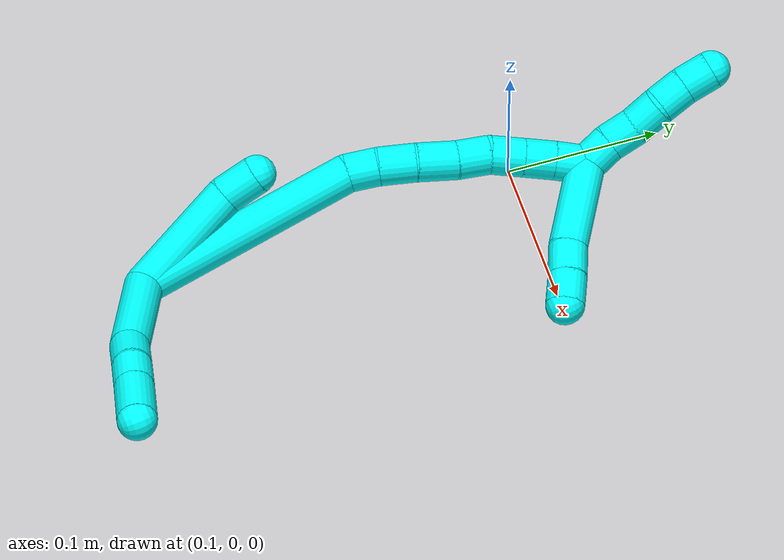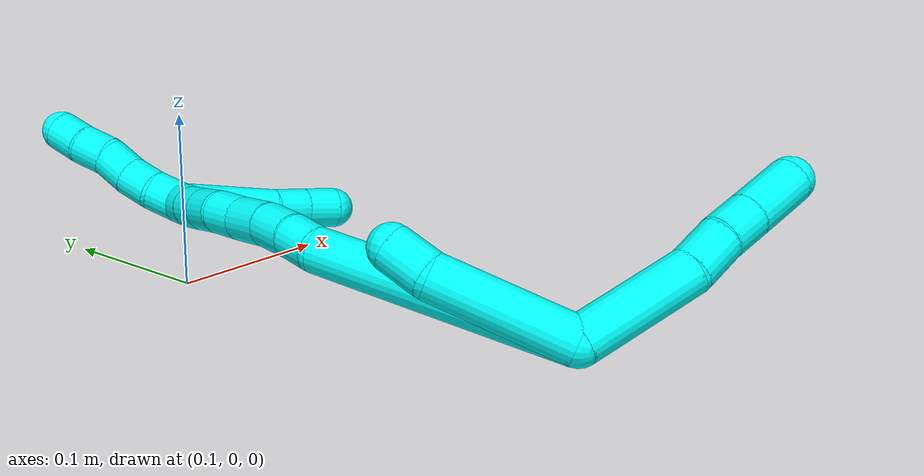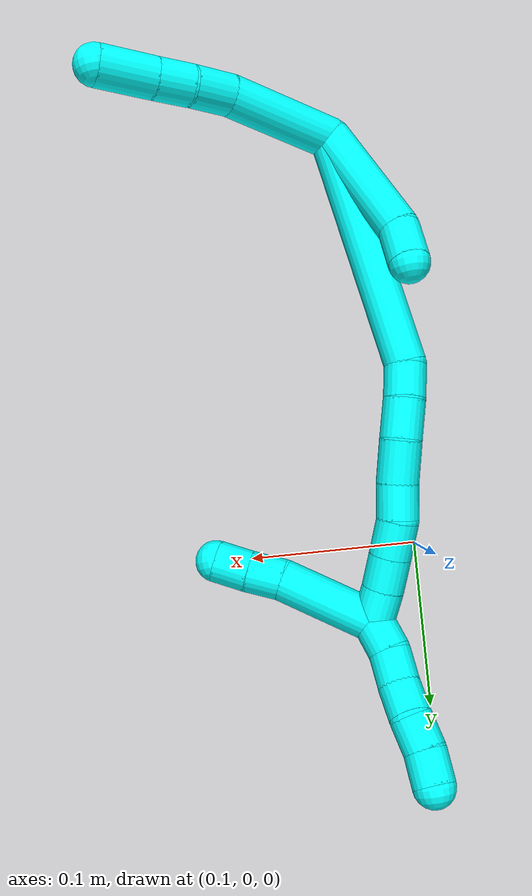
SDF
<sdf version="1.7">
 <world name="default">
  <model name="3">
   <static>0</static>
   <link name="3">
    <collision name="collision-cylinder-e_1_2_8">
     <pose>0.021516 0.023139 0.012491 -1.0758 0.685757 -0.419665</pose>
     <geometry><cylinder><radius>0.0125</radius><length>0.067953</length></cylinder></geometry>
     <surface>
      <friction><ode><mu>1.16</mu><mu2>1.16</mu2><slip1>0</slip1><slip2>0</slip2></ode></friction>
      <contact><ode><kp>1e+06</kp><kd>1</kd><max_vel>0</max_vel><min_depth>0.001</min_depth></ode></contact>
     </surface>
    </collision>
    <visual name="visual-cylinder-e_1_2_8">
     <pose>0.021516 0.023139 0.012491 -1.0758 0.685757 -0.419665</pose>
     <geometry><cylinder><radius>0.0125</radius><length>0.067953</length></cylinder></geometry>
     <material><ambient>0.003922 1 0.996078 1</ambient></material>
    </visual>
    <collision name="collision-cylinder-e_2_8_9">
     <pose>0.050877 0.055886 0.02696 -1.36773 0.674663 -0.556897</pose>
     <geometry><cylinder><radius>0.0125</radius><length>0.025121</length></cylinder></geometry>
     <surface>
      <friction><ode><mu>1.16</mu><mu2>1.16</mu2><slip1>0</slip1><slip2>0</slip2></ode></friction>
      <contact><ode><kp>1e+06</kp><kd>1</kd><max_vel>0</max_vel><min_depth>0.001</min_depth></ode></contact>
     </surface>
    </collision>
    <visual name="visual-cylinder-e_2_8_9">
     <pose>0.050877 0.055886 0.02696 -1.36773 0.674663 -0.556897</pose>
     <geometry><cylinder><radius>0.0125</radius><length>0.025121</length></cylinder></geometry>
     <material><ambient>0.003922 1 0.996078 1</ambient></material>
    </visual>
    <collision name="collision-cylinder-e_3_9_10">
     <pose>0.066505 0.072833 0.031038 -1.29224 0.794975 -0.613226</pose>
     <geometry><cylinder><radius>0.0125</radius><length>0.021803</length></cylinder></geometry>
     <surface>
      <friction><ode><mu>1.16</mu><mu2>1.16</mu2><slip1>0</slip1><slip2>0</slip2></ode></friction>
      <contact><ode><kp>1e+06</kp><kd>1</kd><max_vel>0</max_vel><min_depth>0.001</min_depth></ode></contact>
     </surface>
    </collision>
    <visual name="visual-cylinder-e_3_9_10">
     <pose>0.066505 0.072833 0.031038 -1.29224 0.794975 -0.613226</pose>
     <geometry><cylinder><radius>0.0125</radius><length>0.021803</length></cylinder></geometry>
     <material><ambient>0.003922 1 0.996078 1</ambient></material>
    </visual>
    <collision name="collision-cylinder-e_4_10_6">
     <pose>0.086569 0.092229 0.036633 -1.28857 0.774515 -0.594617</pose>
     <geometry><cylinder><radius>0.0125</radius><length>0.035124</length></cylinder></geometry>
     <surface>
      <friction><ode><mu>1.16</mu><mu2>1.16</mu2><slip1>0</slip1><slip2>0</slip2></ode></friction>
      <contact><ode><kp>1e+06</kp><kd>1</kd><max_vel>0</max_vel><min_depth>0.001</min_depth></ode></contact>
     </surface>
    </collision>
    <visual name="visual-cylinder-e_4_10_6">
     <pose>0.086569 0.092229 0.036633 -1.28857 0.774515 -0.594617</pose>
     <geometry><cylinder><radius>0.0125</radius><length>0.035124</length></cylinder></geometry>
     <material><ambient>0.003922 1 0.996078 1</ambient></material>
    </visual>
    <collision name="collision-cylinder-e_1_2_11">
     <pose>-0.016629 0.004161 -0.033913 -3.01952 -0.452944 2.62308</pose>
     <geometry><cylinder><radius>0.0125</radius><length>0.075998</length></cylinder></geometry>
     <surface>
      <friction><ode><mu>1.16</mu><mu2>1.16</mu2><slip1>0</slip1><slip2>0</slip2></ode></friction>
      <contact><ode><kp>1e+06</kp><kd>1</kd><max_vel>0</max_vel><min_depth>0.001</min_depth></ode></contact>
     </surface>
    </collision>
    <visual name="visual-cylinder-e_1_2_11">
     <pose>-0.016629 0.004161 -0.033913 -3.01952 -0.452944 2.62308</pose>
     <geometry><cylinder><radius>0.0125</radius><length>0.075998</length></cylinder></geometry>
     <material><ambient>0.003922 1 0.996078 1</ambient></material>
    </visual>
    <collision name="collision-cylinder-e_2_11_5">
     <pose>-0.035173 0.01165 -0.079196 -2.85677 -0.160258 1.02104</pose>
     <geometry><cylinder><radius>0.0125</radius><length>0.024002</length></cylinder></geometry>
     <surface>
      <friction><ode><mu>1.16</mu><mu2>1.16</mu2><slip1>0</slip1><slip2>0</slip2></ode></friction>
      <contact><ode><kp>1e+06</kp><kd>1</kd><max_vel>0</max_vel><min_depth>0.001</min_depth></ode></contact>
     </surface>
    </collision>
    <visual name="visual-cylinder-e_2_11_5">
     <pose>-0.035173 0.01165 -0.079196 -2.85677 -0.160258 1.02104</pose>
     <geometry><cylinder><radius>0.0125</radius><length>0.024002</length></cylinder></geometry>
     <material><ambient>0.003922 1 0.996078 1</ambient></material>
    </visual>
    <collision name="collision-cylinder-e_1_2_12">
     <pose>-0.010283 -0.00063 -0.072612 3.13291 -0.140671 -3.01853</pose>
     <geometry><cylinder><radius>0.0125</radius><length>0.146678</length></cylinder></geometry>
     <surface>
      <friction><ode><mu>1.16</mu><mu2>1.16</mu2><slip1>0</slip1><slip2>0</slip2></ode></friction>
      <contact><ode><kp>1e+06</kp><kd>1</kd><max_vel>0</max_vel><min_depth>0.001</min_depth></ode></contact>
     </surface>
    </collision>
    <visual name="visual-cylinder-e_1_2_12">
     <pose>-0.010283 -0.00063 -0.072612 3.13291 -0.140671 -3.01853</pose>
     <geometry><cylinder><radius>0.0125</radius><length>0.146678</length></cylinder></geometry>
     <material><ambient>0.003922 1 0.996078 1</ambient></material>
    </visual>
    <collision name="collision-cylinder-e_2_12_13">
     <pose>-0.018755 -0.000327 -0.155159 -3.04789 0.179473 -2.18088</pose>
     <geometry><cylinder><radius>0.0125</radius><length>0.020283</length></cylinder></geometry>
     <surface>
      <friction><ode><mu>1.16</mu><mu2>1.16</mu2><slip1>0</slip1><slip2>0</slip2></ode></friction>
      <contact><ode><kp>1e+06</kp><kd>1</kd><max_vel>0</max_vel><min_depth>0.001</min_depth></ode></contact>
     </surface>
    </collision>
    <visual name="visual-cylinder-e_2_12_13">
     <pose>-0.018755 -0.000327 -0.155159 -3.04789 0.179473 -2.18088</pose>
     <geometry><cylinder><radius>0.0125</radius><length>0.020283</length></cylinder></geometry>
     <material><ambient>0.003922 1 0.996078 1</ambient></material>
    </visual>
    <collision name="collision-cylinder-e_3_13_14">
     <pose>-0.013782 0.000746 -0.176586 -3.12943 0.268502 -3.05157</pose>
     <geometry><cylinder><radius>0.0125</radius><length>0.023842</length></cylinder></geometry>
     <surface>
      <friction><ode><mu>1.16</mu><mu2>1.16</mu2><slip1>0</slip1><slip2>0</slip2></ode></friction>
      <contact><ode><kp>1e+06</kp><kd>1</kd><max_vel>0</max_vel><min_depth>0.001</min_depth></ode></contact>
     </surface>
    </collision>
    <visual name="visual-cylinder-e_3_13_14">
     <pose>-0.013782 0.000746 -0.176586 -3.12943 0.268502 -3.05157</pose>
     <geometry><cylinder><radius>0.0125</radius><length>0.023842</length></cylinder></geometry>
     <material><ambient>0.003922 1 0.996078 1</ambient></material>
    </visual>
    <collision name="collision-cylinder-e_4_14_15">
     <pose>-0.006939 -0.000584 -0.200412 3.02298 0.288091 2.36449</pose>
     <geometry><cylinder><radius>0.0125</radius><length>0.025909</length></cylinder></geometry>
     <surface>
      <friction><ode><mu>1.16</mu><mu2>1.16</mu2><slip1>0</slip1><slip2>0</slip2></ode></friction>
      <contact><ode><kp>1e+06</kp><kd>1</kd><max_vel>0</max_vel><min_depth>0.001</min_depth></ode></contact>
     </surface>
    </collision>
    <visual name="visual-cylinder-e_4_14_15">
     <pose>-0.006939 -0.000584 -0.200412 3.02298 0.288091 2.36449</pose>
     <geometry><cylinder><radius>0.0125</radius><length>0.025909</length></cylinder></geometry>
     <material><ambient>0.003922 1 0.996078 1</ambient></material>
    </visual>
    <collision name="collision-cylinder-e_5_15_16">
     <pose>-0.001264 -0.002806 -0.223154 3.06944 0.188801 2.41323</pose>
     <geometry><cylinder><radius>0.0125</radius><length>0.021248</length></cylinder></geometry>
     <surface>
      <friction><ode><mu>1.16</mu><mu2>1.16</mu2><slip1>0</slip1><slip2>0</slip2></ode></friction>
      <contact><ode><kp>1e+06</kp><kd>1</kd><max_vel>0</max_vel><min_depth>0.001</min_depth></ode></contact>
     </surface>
    </collision>
    <visual name="visual-cylinder-e_5_15_16">
     <pose>-0.001264 -0.002806 -0.223154 3.06944 0.188801 2.41323</pose>
     <geometry><cylinder><radius>0.0125</radius><length>0.021248</length></cylinder></geometry>
     <material><ambient>0.003922 1 0.996078 1</ambient></material>
    </visual>
    <collision name="collision-cylinder-e_6_16_17">
     <pose>0.005228 -0.005029 -0.243354 2.99246 0.426442 2.4771</pose>
     <geometry><cylinder><radius>0.0125</radius><length>0.021753</length></cylinder></geometry>
     <surface>
      <friction><ode><mu>1.16</mu><mu2>1.16</mu2><slip1>0</slip1><slip2>0</slip2></ode></friction>
      <contact><ode><kp>1e+06</kp><kd>1</kd><max_vel>0</max_vel><min_depth>0.001</min_depth></ode></contact>
     </surface>
    </collision>
    <visual name="visual-cylinder-e_6_16_17">
     <pose>0.005228 -0.005029 -0.243354 2.99246 0.426442 2.4771</pose>
     <geometry><cylinder><radius>0.0125</radius><length>0.021753</length></cylinder></geometry>
     <material><ambient>0.003922 1 0.996078 1</ambient></material>
    </visual>
    <collision name="collision-cylinder-e_7_17_18">
     <pose>0.013966 -0.007788 -0.262205 3.00041 0.433893 2.52075</pose>
     <geometry><cylinder><radius>0.0125</radius><length>0.020168</length></cylinder></geometry>
     <surface>
      <friction><ode><mu>1.16</mu><mu2>1.16</mu2><slip1>0</slip1><slip2>0</slip2></ode></friction>
      <contact><ode><kp>1e+06</kp><kd>1</kd><max_vel>0</max_vel><min_depth>0.001</min_depth></ode></contact>
     </surface>
    </collision>
    <visual name="visual-cylinder-e_7_17_18">
     <pose>0.013966 -0.007788 -0.262205 3.00041 0.433893 2.52075</pose>
     <geometry><cylinder><radius>0.0125</radius><length>0.020168</length></cylinder></geometry>
     <material><ambient>0.003922 1 0.996078 1</ambient></material>
    </visual>
    <collision name="collision-cylinder-e_8_18_1">
     <pose>0.022986 -0.009806 -0.280085 3.05891 0.495193 2.81719</pose>
     <geometry><cylinder><radius>0.0125</radius><length>0.02012</length></cylinder></geometry>
     <surface>
      <friction><ode><mu>1.16</mu><mu2>1.16</mu2><slip1>0</slip1><slip2>0</slip2></ode></friction>
      <contact><ode><kp>1e+06</kp><kd>1</kd><max_vel>0</max_vel><min_depth>0.001</min_depth></ode></contact>
     </surface>
    </collision>
    <visual name="visual-cylinder-e_8_18_1">
     <pose>0.022986 -0.009806 -0.280085 3.05891 0.495193 2.81719</pose>
     <geometry><cylinder><radius>0.0125</radius><length>0.02012</length></cylinder></geometry>
     <material><ambient>0.003922 1 0.996078 1</ambient></material>
    </visual>
    <collision name="collision-cylinder-e_1_1_19">
     <pose>0.02409 -0.009433 -0.29814 -3.02259 -0.376458 2.53538</pose>
     <geometry><cylinder><radius>0.0125</radius><length>0.02</length></cylinder></geometry>
     <surface>
      <friction><ode><mu>1.16</mu><mu2>1.16</mu2><slip1>0</slip1><slip2>0</slip2></ode></friction>
      <contact><ode><kp>1e+06</kp><kd>1</kd><max_vel>0</max_vel><min_depth>0.001</min_depth></ode></contact>
     </surface>
    </collision>
    <visual name="visual-cylinder-e_1_1_19">
     <pose>0.02409 -0.009433 -0.29814 -3.02259 -0.376458 2.53538</pose>
     <geometry><cylinder><radius>0.0125</radius><length>0.02</length></cylinder></geometry>
     <material><ambient>0.003922 1 0.996078 1</ambient></material>
    </visual>
    <collision name="collision-cylinder-e_2_19_20">
     <pose>0.018772 -0.006517 -0.31707 -2.95687 -0.16501 1.45762</pose>
     <geometry><cylinder><radius>0.0125</radius><length>0.02</length></cylinder></geometry>
     <surface>
      <friction><ode><mu>1.16</mu><mu2>1.16</mu2><slip1>0</slip1><slip2>0</slip2></ode></friction>
      <contact><ode><kp>1e+06</kp><kd>1</kd><max_vel>0</max_vel><min_depth>0.001</min_depth></ode></contact>
     </surface>
    </collision>
    <visual name="visual-cylinder-e_2_19_20">
     <pose>0.018772 -0.006517 -0.31707 -2.95687 -0.16501 1.45762</pose>
     <geometry><cylinder><radius>0.0125</radius><length>0.02</length></cylinder></geometry>
     <material><ambient>0.003922 1 0.996078 1</ambient></material>
    </visual>
    <collision name="collision-cylinder-e_3_20_21">
     <pose>0.014437 -0.001209 -0.335741 -2.77006 -0.272522 1.2606</pose>
     <geometry><cylinder><radius>0.0125</radius><length>0.02</length></cylinder></geometry>
     <surface>
      <friction><ode><mu>1.16</mu><mu2>1.16</mu2><slip1>0</slip1><slip2>0</slip2></ode></friction>
      <contact><ode><kp>1e+06</kp><kd>1</kd><max_vel>0</max_vel><min_depth>0.001</min_depth></ode></contact>
     </surface>
    </collision>
    <visual name="visual-cylinder-e_3_20_21">
     <pose>0.014437 -0.001209 -0.335741 -2.77006 -0.272522 1.2606</pose>
     <geometry><cylinder><radius>0.0125</radius><length>0.02</length></cylinder></geometry>
     <material><ambient>0.003922 1 0.996078 1</ambient></material>
    </visual>
    <collision name="collision-cylinder-e_4_21_22">
     <pose>0.008979 0.003396 -0.35426 -3.02599 -0.280289 2.36309</pose>
     <geometry><cylinder><radius>0.0125</radius><length>0.02</length></cylinder></geometry>
     <surface>
      <friction><ode><mu>1.16</mu><mu2>1.16</mu2><slip1>0</slip1><slip2>0</slip2></ode></friction>
      <contact><ode><kp>1e+06</kp><kd>1</kd><max_vel>0</max_vel><min_depth>0.001</min_depth></ode></contact>
     </surface>
    </collision>
    <visual name="visual-cylinder-e_4_21_22">
     <pose>0.008979 0.003396 -0.35426 -3.02599 -0.280289 2.36309</pose>
     <geometry><cylinder><radius>0.0125</radius><length>0.02</length></cylinder></geometry>
     <material><ambient>0.003922 1 0.996078 1</ambient></material>
    </visual>
    <collision name="collision-cylinder-e_5_22_4">
     <pose>0.004865 0.006282 -0.373554 -2.96116 -0.135183 1.28488</pose>
     <geometry><cylinder><radius>0.0125</radius><length>0.02</length></cylinder></geometry>
     <surface>
      <friction><ode><mu>1.16</mu><mu2>1.16</mu2><slip1>0</slip1><slip2>0</slip2></ode></friction>
      <contact><ode><kp>1e+06</kp><kd>1</kd><max_vel>0</max_vel><min_depth>0.001</min_depth></ode></contact>
     </surface>
    </collision>
    <visual name="visual-cylinder-e_5_22_4">
     <pose>0.004865 0.006282 -0.373554 -2.96116 -0.135183 1.28488</pose>
     <geometry><cylinder><radius>0.0125</radius><length>0.02</length></cylinder></geometry>
     <material><ambient>0.003922 1 0.996078 1</ambient></material>
    </visual>
    <collision name="collision-cylinder-e_1_1_23">
     <pose>0.051524 -0.00476 -0.272731 -0.343025 0.944819 -0.176565</pose>
     <geometry><cylinder><radius>0.0125</radius><length>0.058632</length></cylinder></geometry>
     <surface>
      <friction><ode><mu>1.16</mu><mu2>1.16</mu2><slip1>0</slip1><slip2>0</slip2></ode></friction>
      <contact><ode><kp>1e+06</kp><kd>1</kd><max_vel>0</max_vel><min_depth>0.001</min_depth></ode></contact>
     </surface>
    </collision>
    <visual name="visual-cylinder-e_1_1_23">
     <pose>0.051524 -0.00476 -0.272731 -0.343025 0.944819 -0.176565</pose>
     <geometry><cylinder><radius>0.0125</radius><length>0.058632</length></cylinder></geometry>
     <material><ambient>0.003922 1 0.996078 1</ambient></material>
    </visual>
    <collision name="collision-cylinder-e_2_23_24">
     <pose>0.084455 0.003745 -0.252478 -0.589628 1.07967 -0.359977</pose>
     <geometry><cylinder><radius>0.0125</radius><length>0.020806</length></cylinder></geometry>
     <surface>
      <friction><ode><mu>1.16</mu><mu2>1.16</mu2><slip1>0</slip1><slip2>0</slip2></ode></friction>
      <contact><ode><kp>1e+06</kp><kd>1</kd><max_vel>0</max_vel><min_depth>0.001</min_depth></ode></contact>
     </surface>
    </collision>
    <visual name="visual-cylinder-e_2_23_24">
     <pose>0.084455 0.003745 -0.252478 -0.589628 1.07967 -0.359977</pose>
     <geometry><cylinder><radius>0.0125</radius><length>0.020806</length></cylinder></geometry>
     <material><ambient>0.003922 1 0.996078 1</ambient></material>
    </visual>
    <collision name="collision-cylinder-e_3_24_3">
     <pose>0.102466 0.009012 -0.243801 -0.504504 1.03449 -0.29119</pose>
     <geometry><cylinder><radius>0.0125</radius><length>0.020562</length></cylinder></geometry>
     <surface>
      <friction><ode><mu>1.16</mu><mu2>1.16</mu2><slip1>0</slip1><slip2>0</slip2></ode></friction>
      <contact><ode><kp>1e+06</kp><kd>1</kd><max_vel>0</max_vel><min_depth>0.001</min_depth></ode></contact>
     </surface>
    </collision>
    <visual name="visual-cylinder-e_3_24_3">
     <pose>0.102466 0.009012 -0.243801 -0.504504 1.03449 -0.29119</pose>
     <geometry><cylinder><radius>0.0125</radius><length>0.020562</length></cylinder></geometry>
     <material><ambient>0.003922 1 0.996078 1</ambient></material>
    </visual>
    <collision name="collision-sphere-3">
     <pose>0.111304 0.011551 -0.239202 0 -0 0</pose>
     <geometry><sphere><radius>0.0125</radius></sphere></geometry>
     <surface>
      <friction><ode><mu>1.16</mu><mu2>1.16</mu2><slip1>0</slip1><slip2>0</slip2></ode></friction>
      <contact><ode><kp>1e+06</kp><kd>1</kd><max_vel>0</max_vel><min_depth>0.001</min_depth></ode></contact>
     </surface>
    </collision>
    <visual name="visual-sphere-3">
     <pose>0.111304 0.011551 -0.239202 0 -0 0</pose>
     <geometry><sphere><radius>0.0125</radius></sphere></geometry>
     <material><ambient>0.003922 1 0.996078 1</ambient></material>
    </visual>
    <collision name="collision-sphere-24">
     <pose>0.093628 0.006473 -0.2484 0 -0 0</pose>
     <geometry><sphere><radius>0.0125</radius></sphere></geometry>
     <surface>
      <friction><ode><mu>1.16</mu><mu2>1.16</mu2><slip1>0</slip1><slip2>0</slip2></ode></friction>
      <contact><ode><kp>1e+06</kp><kd>1</kd><max_vel>0</max_vel><min_depth>0.001</min_depth></ode></contact>
     </surface>
    </collision>
    <visual name="visual-sphere-24">
     <pose>0.093628 0.006473 -0.2484 0 -0 0</pose>
     <geometry><sphere><radius>0.0125</radius></sphere></geometry>
     <material><ambient>0.003922 1 0.996078 1</ambient></material>
    </visual>
    <collision name="collision-sphere-23">
     <pose>0.075282 0.001016 -0.256555 0 -0 0</pose>
     <geometry><sphere><radius>0.0125</radius></sphere></geometry>
     <surface>
      <friction><ode><mu>1.16</mu><mu2>1.16</mu2><slip1>0</slip1><slip2>0</slip2></ode></friction>
      <contact><ode><kp>1e+06</kp><kd>1</kd><max_vel>0</max_vel><min_depth>0.001</min_depth></ode></contact>
     </surface>
    </collision>
    <visual name="visual-sphere-23">
     <pose>0.075282 0.001016 -0.256555 0 -0 0</pose>
     <geometry><sphere><radius>0.0125</radius></sphere></geometry>
     <material><ambient>0.003922 1 0.996078 1</ambient></material>
    </visual>
    <collision name="collision-sphere-4">
     <pose>0.003518 0.00806 -0.383301 0 -0 0</pose>
     <geometry><sphere><radius>0.0125</radius></sphere></geometry>
     <surface>
      <friction><ode><mu>1.16</mu><mu2>1.16</mu2><slip1>0</slip1><slip2>0</slip2></ode></friction>
      <contact><ode><kp>1e+06</kp><kd>1</kd><max_vel>0</max_vel><min_depth>0.001</min_depth></ode></contact>
     </surface>
    </collision>
    <visual name="visual-sphere-4">
     <pose>0.003518 0.00806 -0.383301 0 -0 0</pose>
     <geometry><sphere><radius>0.0125</radius></sphere></geometry>
     <material><ambient>0.003922 1 0.996078 1</ambient></material>
    </visual>
    <collision name="collision-sphere-22">
     <pose>0.006213 0.004504 -0.363806 0 -0 0</pose>
     <geometry><sphere><radius>0.0125</radius></sphere></geometry>
     <surface>
      <friction><ode><mu>1.16</mu><mu2>1.16</mu2><slip1>0</slip1><slip2>0</slip2></ode></friction>
      <contact><ode><kp>1e+06</kp><kd>1</kd><max_vel>0</max_vel><min_depth>0.001</min_depth></ode></contact>
     </surface>
    </collision>
    <visual name="visual-sphere-22">
     <pose>0.006213 0.004504 -0.363806 0 -0 0</pose>
     <geometry><sphere><radius>0.0125</radius></sphere></geometry>
     <material><ambient>0.003922 1 0.996078 1</ambient></material>
    </visual>
    <collision name="collision-sphere-21">
     <pose>0.011746 0.002287 -0.344714 0 -0 0</pose>
     <geometry><sphere><radius>0.0125</radius></sphere></geometry>
     <surface>
      <friction><ode><mu>1.16</mu><mu2>1.16</mu2><slip1>0</slip1><slip2>0</slip2></ode></friction>
      <contact><ode><kp>1e+06</kp><kd>1</kd><max_vel>0</max_vel><min_depth>0.001</min_depth></ode></contact>
     </surface>
    </collision>
    <visual name="visual-sphere-21">
     <pose>0.011746 0.002287 -0.344714 0 -0 0</pose>
     <geometry><sphere><radius>0.0125</radius></sphere></geometry>
     <material><ambient>0.003922 1 0.996078 1</ambient></material>
    </visual>
    <collision name="collision-sphere-20">
     <pose>0.017129 -0.004706 -0.326767 0 -0 0</pose>
     <geometry><sphere><radius>0.0125</radius></sphere></geometry>
     <surface>
      <friction><ode><mu>1.16</mu><mu2>1.16</mu2><slip1>0</slip1><slip2>0</slip2></ode></friction>
      <contact><ode><kp>1e+06</kp><kd>1</kd><max_vel>0</max_vel><min_depth>0.001</min_depth></ode></contact>
     </surface>
    </collision>
    <visual name="visual-sphere-20">
     <pose>0.017129 -0.004706 -0.326767 0 -0 0</pose>
     <geometry><sphere><radius>0.0125</radius></sphere></geometry>
     <material><ambient>0.003922 1 0.996078 1</ambient></material>
    </visual>
    <collision name="collision-sphere-11">
     <pose>-0.033258 0.008321 -0.067826 0 -0 0</pose>
     <geometry><sphere><radius>0.0125</radius></sphere></geometry>
     <surface>
      <friction><ode><mu>1.16</mu><mu2>1.16</mu2><slip1>0</slip1><slip2>0</slip2></ode></friction>
      <contact><ode><kp>1e+06</kp><kd>1</kd><max_vel>0</max_vel><min_depth>0.001</min_depth></ode></contact>
     </surface>
    </collision>
    <visual name="visual-sphere-11">
     <pose>-0.033258 0.008321 -0.067826 0 -0 0</pose>
     <geometry><sphere><radius>0.0125</radius></sphere></geometry>
     <material><ambient>0.003922 1 0.996078 1</ambient></material>
    </visual>
    <collision name="collision-sphere-6">
     <pose>0.098851 0.104285 0.040128 0 -0 0</pose>
     <geometry><sphere><radius>0.0125</radius></sphere></geometry>
     <surface>
      <friction><ode><mu>1.16</mu><mu2>1.16</mu2><slip1>0</slip1><slip2>0</slip2></ode></friction>
      <contact><ode><kp>1e+06</kp><kd>1</kd><max_vel>0</max_vel><min_depth>0.001</min_depth></ode></contact>
     </surface>
    </collision>
    <visual name="visual-sphere-6">
     <pose>0.098851 0.104285 0.040128 0 -0 0</pose>
     <geometry><sphere><radius>0.0125</radius></sphere></geometry>
     <material><ambient>0.003922 1 0.996078 1</ambient></material>
    </visual>
    <collision name="collision-sphere-10">
     <pose>0.074287 0.080173 0.033137 0 -0 0</pose>
     <geometry><sphere><radius>0.0125</radius></sphere></geometry>
     <surface>
      <friction><ode><mu>1.16</mu><mu2>1.16</mu2><slip1>0</slip1><slip2>0</slip2></ode></friction>
      <contact><ode><kp>1e+06</kp><kd>1</kd><max_vel>0</max_vel><min_depth>0.001</min_depth></ode></contact>
     </surface>
    </collision>
    <visual name="visual-sphere-10">
     <pose>0.074287 0.080173 0.033137 0 -0 0</pose>
     <geometry><sphere><radius>0.0125</radius></sphere></geometry>
     <material><ambient>0.003922 1 0.996078 1</ambient></material>
    </visual>
    <collision name="collision-sphere-9">
     <pose>0.058723 0.065493 0.028938 0 -0 0</pose>
     <geometry><sphere><radius>0.0125</radius></sphere></geometry>
     <surface>
      <friction><ode><mu>1.16</mu><mu2>1.16</mu2><slip1>0</slip1><slip2>0</slip2></ode></friction>
      <contact><ode><kp>1e+06</kp><kd>1</kd><max_vel>0</max_vel><min_depth>0.001</min_depth></ode></contact>
     </surface>
    </collision>
    <visual name="visual-sphere-9">
     <pose>0.058723 0.065493 0.028938 0 -0 0</pose>
     <geometry><sphere><radius>0.0125</radius></sphere></geometry>
     <material><ambient>0.003922 1 0.996078 1</ambient></material>
    </visual>
    <collision name="collision-sphere-2">
     <geometry><sphere><radius>0.0125</radius></sphere></geometry>
     <surface>
      <friction><ode><mu>1.16</mu><mu2>1.16</mu2><slip1>0</slip1><slip2>0</slip2></ode></friction>
      <contact><ode><kp>1e+06</kp><kd>1</kd><max_vel>0</max_vel><min_depth>0.001</min_depth></ode></contact>
     </surface>
    </collision>
    <visual name="visual-sphere-2">
     <geometry><sphere><radius>0.0125</radius></sphere></geometry>
     <material><ambient>0.003922 1 0.996078 1</ambient></material>
    </visual>
    <collision name="collision-sphere-19">
     <pose>0.020414 -0.008329 -0.307374 0 -0 0</pose>
     <geometry><sphere><radius>0.0125</radius></sphere></geometry>
     <surface>
      <friction><ode><mu>1.16</mu><mu2>1.16</mu2><slip1>0</slip1><slip2>0</slip2></ode></friction>
      <contact><ode><kp>1e+06</kp><kd>1</kd><max_vel>0</max_vel><min_depth>0.001</min_depth></ode></contact>
     </surface>
    </collision>
    <visual name="visual-sphere-19">
     <pose>0.020414 -0.008329 -0.307374 0 -0 0</pose>
     <geometry><sphere><radius>0.0125</radius></sphere></geometry>
     <material><ambient>0.003922 1 0.996078 1</ambient></material>
    </visual>
    <collision name="collision-sphere-8">
     <pose>0.043032 0.046279 0.024982 0 -0 0</pose>
     <geometry><sphere><radius>0.0125</radius></sphere></geometry>
     <surface>
      <friction><ode><mu>1.16</mu><mu2>1.16</mu2><slip1>0</slip1><slip2>0</slip2></ode></friction>
      <contact><ode><kp>1e+06</kp><kd>1</kd><max_vel>0</max_vel><min_depth>0.001</min_depth></ode></contact>
     </surface>
    </collision>
    <visual name="visual-sphere-8">
     <pose>0.043032 0.046279 0.024982 0 -0 0</pose>
     <geometry><sphere><radius>0.0125</radius></sphere></geometry>
     <material><ambient>0.003922 1 0.996078 1</ambient></material>
    </visual>
    <collision name="collision-sphere-5">
     <pose>-0.037088 0.014979 -0.090566 0 -0 0</pose>
     <geometry><sphere><radius>0.0125</radius></sphere></geometry>
     <surface>
      <friction><ode><mu>1.16</mu><mu2>1.16</mu2><slip1>0</slip1><slip2>0</slip2></ode></friction>
      <contact><ode><kp>1e+06</kp><kd>1</kd><max_vel>0</max_vel><min_depth>0.001</min_depth></ode></contact>
     </surface>
    </collision>
    <visual name="visual-sphere-5">
     <pose>-0.037088 0.014979 -0.090566 0 -0 0</pose>
     <geometry><sphere><radius>0.0125</radius></sphere></geometry>
     <material><ambient>0.003922 1 0.996078 1</ambient></material>
    </visual>
    <collision name="collision-sphere-12">
     <pose>-0.020565 -0.001261 -0.145224 0 -0 0</pose>
     <geometry><sphere><radius>0.0125</radius></sphere></geometry>
     <surface>
      <friction><ode><mu>1.16</mu><mu2>1.16</mu2><slip1>0</slip1><slip2>0</slip2></ode></friction>
      <contact><ode><kp>1e+06</kp><kd>1</kd><max_vel>0</max_vel><min_depth>0.001</min_depth></ode></contact>
     </surface>
    </collision>
    <visual name="visual-sphere-12">
     <pose>-0.020565 -0.001261 -0.145224 0 -0 0</pose>
     <geometry><sphere><radius>0.0125</radius></sphere></geometry>
     <material><ambient>0.003922 1 0.996078 1</ambient></material>
    </visual>
    <collision name="collision-sphere-13">
     <pose>-0.016945 0.000607 -0.165094 0 -0 0</pose>
     <geometry><sphere><radius>0.0125</radius></sphere></geometry>
     <surface>
      <friction><ode><mu>1.16</mu><mu2>1.16</mu2><slip1>0</slip1><slip2>0</slip2></ode></friction>
      <contact><ode><kp>1e+06</kp><kd>1</kd><max_vel>0</max_vel><min_depth>0.001</min_depth></ode></contact>
     </surface>
    </collision>
    <visual name="visual-sphere-13">
     <pose>-0.016945 0.000607 -0.165094 0 -0 0</pose>
     <geometry><sphere><radius>0.0125</radius></sphere></geometry>
     <material><ambient>0.003922 1 0.996078 1</ambient></material>
    </visual>
    <collision name="collision-sphere-14">
     <pose>-0.01062 0.000886 -0.188079 0 -0 0</pose>
     <geometry><sphere><radius>0.0125</radius></sphere></geometry>
     <surface>
      <friction><ode><mu>1.16</mu><mu2>1.16</mu2><slip1>0</slip1><slip2>0</slip2></ode></friction>
      <contact><ode><kp>1e+06</kp><kd>1</kd><max_vel>0</max_vel><min_depth>0.001</min_depth></ode></contact>
     </surface>
    </collision>
    <visual name="visual-sphere-14">
     <pose>-0.01062 0.000886 -0.188079 0 -0 0</pose>
     <geometry><sphere><radius>0.0125</radius></sphere></geometry>
     <material><ambient>0.003922 1 0.996078 1</ambient></material>
    </visual>
    <collision name="collision-sphere-15">
     <pose>-0.003258 -0.002053 -0.212746 0 -0 0</pose>
     <geometry><sphere><radius>0.0125</radius></sphere></geometry>
     <surface>
      <friction><ode><mu>1.16</mu><mu2>1.16</mu2><slip1>0</slip1><slip2>0</slip2></ode></friction>
      <contact><ode><kp>1e+06</kp><kd>1</kd><max_vel>0</max_vel><min_depth>0.001</min_depth></ode></contact>
     </surface>
    </collision>
    <visual name="visual-sphere-15">
     <pose>-0.003258 -0.002053 -0.212746 0 -0 0</pose>
     <geometry><sphere><radius>0.0125</radius></sphere></geometry>
     <material><ambient>0.003922 1 0.996078 1</ambient></material>
    </visual>
    <collision name="collision-sphere-16">
     <pose>0.000729 -0.003558 -0.233562 0 -0 0</pose>
     <geometry><sphere><radius>0.0125</radius></sphere></geometry>
     <surface>
      <friction><ode><mu>1.16</mu><mu2>1.16</mu2><slip1>0</slip1><slip2>0</slip2></ode></friction>
      <contact><ode><kp>1e+06</kp><kd>1</kd><max_vel>0</max_vel><min_depth>0.001</min_depth></ode></contact>
     </surface>
    </collision>
    <visual name="visual-sphere-16">
     <pose>0.000729 -0.003558 -0.233562 0 -0 0</pose>
     <geometry><sphere><radius>0.0125</radius></sphere></geometry>
     <material><ambient>0.003922 1 0.996078 1</ambient></material>
    </visual>
    <collision name="collision-sphere-17">
     <pose>0.009727 -0.0065 -0.253147 0 -0 0</pose>
     <geometry><sphere><radius>0.0125</radius></sphere></geometry>
     <surface>
      <friction><ode><mu>1.16</mu><mu2>1.16</mu2><slip1>0</slip1><slip2>0</slip2></ode></friction>
      <contact><ode><kp>1e+06</kp><kd>1</kd><max_vel>0</max_vel><min_depth>0.001</min_depth></ode></contact>
     </surface>
    </collision>
    <visual name="visual-sphere-17">
     <pose>0.009727 -0.0065 -0.253147 0 -0 0</pose>
     <geometry><sphere><radius>0.0125</radius></sphere></geometry>
     <material><ambient>0.003922 1 0.996078 1</ambient></material>
    </visual>
    <collision name="collision-sphere-18">
     <pose>0.018206 -0.009075 -0.271264 0 -0 0</pose>
     <geometry><sphere><radius>0.0125</radius></sphere></geometry>
     <surface>
      <friction><ode><mu>1.16</mu><mu2>1.16</mu2><slip1>0</slip1><slip2>0</slip2></ode></friction>
      <contact><ode><kp>1e+06</kp><kd>1</kd><max_vel>0</max_vel><min_depth>0.001</min_depth></ode></contact>
     </surface>
    </collision>
    <visual name="visual-sphere-18">
     <pose>0.018206 -0.009075 -0.271264 0 -0 0</pose>
     <geometry><sphere><radius>0.0125</radius></sphere></geometry>
     <material><ambient>0.003922 1 0.996078 1</ambient></material>
    </visual>
    <collision name="collision-sphere-1">
     <pose>0.027767 -0.010537 -0.288906 0 -0 0</pose>
     <geometry><sphere><radius>0.0125</radius></sphere></geometry>
     <surface>
      <friction><ode><mu>1.16</mu><mu2>1.16</mu2><slip1>0</slip1><slip2>0</slip2></ode></friction>
      <contact><ode><kp>1e+06</kp><kd>1</kd><max_vel>0</max_vel><min_depth>0.001</min_depth></ode></contact>
     </surface>
    </collision>
    <visual name="visual-sphere-1">
     <pose>0.027767 -0.010537 -0.288906 0 -0 0</pose>
     <geometry><sphere><radius>0.0125</radius></sphere></geometry>
     <material><ambient>0.003922 1 0.996078 1</ambient></material>
    </visual>
    <inertial>
     <pose>0.01582 0.010152 -0.139973 0 -0 0</pose>
     <mass>0.75</mass>
     <inertia>
      <ixx>-0.000273</ixx>
      <ixy>0</ixy>
      <ixz>0</ixz>
      <iyy>0.000351</iyy>
      <iyz>0</iyz>
      <izz>-5.3e-05</izz>
     </inertia>
    </inertial>
   </link>
   <pose>0.127554 -0.249345 0.021598 1.68922 0.34899 0.101827</pose>
  </model>
 </world>
</sdf>
